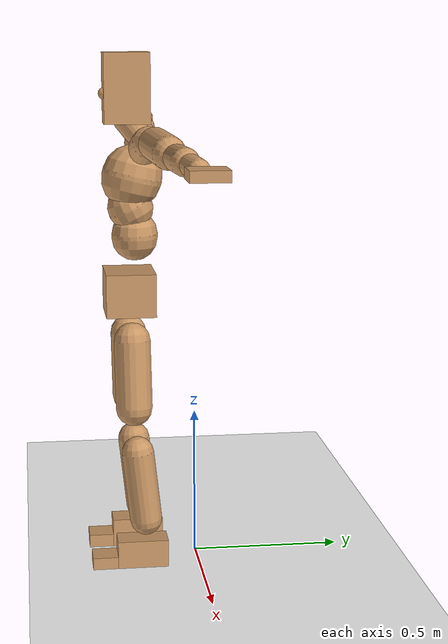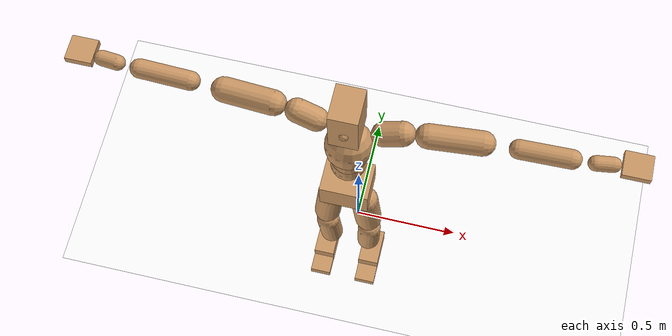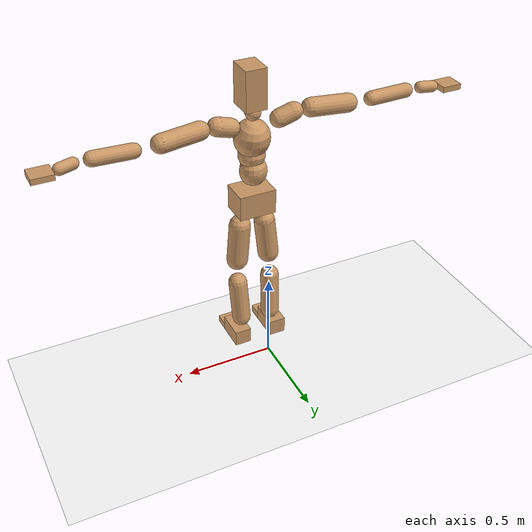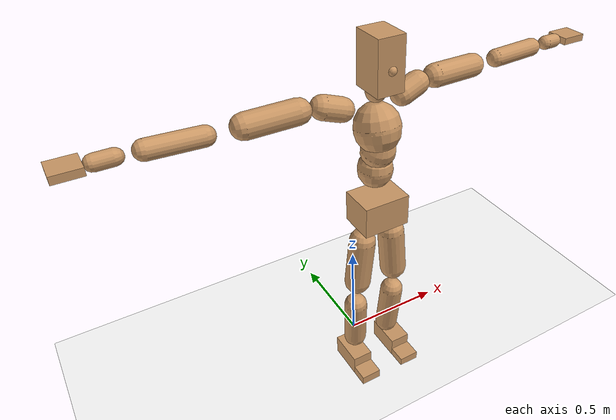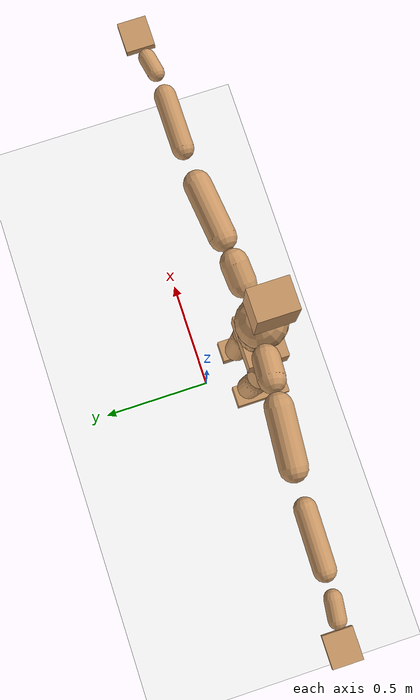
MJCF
<mujoco model="humanoid">
  <option integrator="implicitfast" />

  <visual>
    <global offwidth="1280" offheight="960" />
    <headlight active="1" ambient="0.34 0.34 0.34" diffuse="0.5 0.5 0.5" />
  </visual>

  <default>
    <joint damping="2" stiffness="2" armature="0.01" limited="true" solimplimit="0 .99 .01" />
    <geom condim="1" friction="0.7 0.005 0.0001" solimp=".99 .99 .003" solref="0.015 1" margin="0.001" rgba="0.8 0.6 .4 1" />
    <default class="smplcontact">
      <geom condim="3" friction="1. 0.005 0.0001" solref="0.015 1" solimp="0.98 0.98 0.001" priority="1" />
    </default>
    <default class="stiff_medium">
      <joint stiffness="10" />
    </default>
    <default class="stiff_medium_higher">
      <joint stiffness="50" />
    </default>
    <default class="stiff_high">
      <joint stiffness="100" />
    </default>
  </default>

  <asset>
    <texture type="skybox" builtin="gradient" rgb1="0.99 0.99 0.99" rgb2="0.608 0.828 0.892" width="100" />
    <texture builtin="flat" height="1278" mark="cross" markrgb="1 1 1" name="texgeom" random="0.01" rgb1="0.8 0.6 0.4" rgb2="0.8 0.6 0.4" type="cube" width="127" />
    <texture name="texplane" type="2d" builtin="checker" markrgb="1 1 1" rgb1="0.756 0.772 0.76" rgb2="0.6 0.6 0.6" width="100" height="100" />
    <material name="MatPlane" reflectance="0.5" texture="texplane" texrepeat="1 1" texuniform="true" />
    <material name="geom" texture="texgeom" texuniform="true" />
  </asset>

  <worldbody>
    <light name="tracking_light" pos="0 0 7" dir="0 0 -1" directional="true" cutoff="100" exponent="1" diffuse="1 1 1" specular="0.1 0.1 0.1" mode="trackcom" />
    <camera name="back" pos="0 3 2.4" xyaxes="-1 0 0 0 -1 2" mode="trackcom" />
    <camera name="side" pos="-3 0 2.4" xyaxes="0 -1 0 1 0 2" mode="trackcom" />
    <camera name="front_side" pos="-2.8 -2.8 0.8" xyaxes="0.5 -0.5 0 0.1 0.1 1" mode="trackcom" />
    <geom condim="3" name="floor" pos="0 0 0" rgba="1 1 1 1" size="100 100 .2" type="plane" material="MatPlane" />
    <body name="Pelvis" pos="-0.0018 -0.2233 0.9367" euler="90 0 0">
      <site name="Pelvis" size="0.01" />
      <freejoint name="Pelvis" />
      <geom type="box" pos="-0.0000 -0.0121 -0.0055" size="0.1069 0.0722 0.083" quat="1.0000 0.0000 0.0000 0.0000" density="3165.830099" name="Pelvis" />
      <body name="L_Hip" pos="0.0695 -0.0914 -0.0068">
        <joint name="L_Hip_x" type="hinge" pos="0 0 0" axis="1 0 0" stiffness="10.0" range="-160.0 22.92" class="stiff_medium" damping="15.0" armature="0.01"/>
        <joint name="L_Hip_y" type="hinge" pos="0 0 0" axis="0 1 0" stiffness="10.0" range="-70.0 70.0" class="stiff_medium" damping="10.000000000000004" armature="0.010000000000000009"/>
        <joint name="L_Hip_z" type="hinge" pos="0 0 0" axis="0 0 1" stiffness="10.0" range="-28.65 90.0" class="stiff_medium" damping="10.0" armature="0.01"/>
        <geom type="capsule" density="2040.816327" fromto="0.0069 -0.075 -0.0009 0.0274 -0.3002 -0.0036" size="0.0615" name="L_Hip" />
        <body name="L_Knee" pos="0.0343 -0.3752 -0.0045">
          <joint name="L_Knee_x" type="hinge" pos="0 0 0" axis="1 0 0" range="-5.16 171.89" damping="8.000000000000002" armature="0.010000000000000005" stiffness="2.0"/>
          <joint name="L_Knee_y" type="hinge" pos="0 0 0" axis="0 1 0" range="-4.58 6.88" damping="8.000000000000002" armature="0.010000000000000007" stiffness="2.0"/>
          <joint name="L_Knee_z" type="hinge" pos="0 0 0" axis="0 0 1" range="-6.88 4.58" damping="8.000000000000002" armature="0.010000000000000005" stiffness="2.0"/>
          <geom type="capsule" density="1234.567901" fromto="-0.0027 -0.0796 -0.0087 -0.0109 -0.3184 -0.035" size="0.0541" name="L_Knee" />
          <body name="L_Ankle" pos="-0.0136 -0.398 -0.0437">
            <joint name="L_Ankle_x" type="hinge" pos="0 0 0" axis="1 0 0" range="-45.84 45.84" class="stiff_medium" damping="6.00000000000005" armature="0.010000000000000167" stiffness="10.0"/>
            <joint name="L_Ankle_y" type="hinge" pos="0 0 0" axis="0 1 0" range="-74.48 22.92" class="stiff_medium" damping="3.000000000000001" armature="0.010000000000000005" stiffness="10.0"/>
            <joint name="L_Ankle_z" type="hinge" pos="0 0 0" axis="0 0 1" range="-4.58 4.58" class="stiff_medium" damping="6.000000000000072" armature="0.01000000000000024" stiffness="10.0"/>
            <geom type="box" pos="0.0233 -0.0239 0.0242" size="0.0483 0.0464 0.085" quat="1.0000 0.0000 0.0000 0.0000" density="449.071558" name="L_Ankle" class="smplcontact" />
            <body name="L_Toe" pos="0.0264 -0.0558 0.1193">
              <joint name="L_Toe_x" type="hinge" pos="0 0 0" axis="1 0 0" range="-91.67 22.92" armature="0.0100000000000001" damping="2.0000000000000098" stiffness="2.0"/>
              <joint name="L_Toe_y" type="hinge" pos="0 0 0" axis="0 1 0" range="-4.58 4.58" armature="0.009999999999999976" damping="1.9999999999999976" stiffness="2.0"/>
              <joint name="L_Toe_z" type="hinge" pos="0 0 0" axis="0 0 1" range="-4.58 4.58" armature="0.00999999999999938" damping="1.9999999999999378" stiffness="2.0"/>
              <geom type="box" pos="-0.003 0.0055 0.0248" size="0.0478 0.02 0.0496" quat="1.0000 0.0000 0.0000 0.0000" density="423.206892" name="L_Toe" class="smplcontact" />
            </body>
          </body>
        </body>
      </body>
      <body name="R_Hip" pos="-0.0677 -0.0905 -0.0043">
        <joint name="R_Hip_x" type="hinge" pos="0 0 0" axis="1 0 0" stiffness="10.0" range="-160.0 22.92" class="stiff_medium" damping="15.0" armature="0.01"/>
        <joint name="R_Hip_y" type="hinge" pos="0 0 0" axis="0 1 0" stiffness="10.0" range="-70.0 70.0" class="stiff_medium" damping="10.000000000000004" armature="0.010000000000000009"/>
        <joint name="R_Hip_z" type="hinge" pos="0 0 0" axis="0 0 1" stiffness="10.0" range="-90.0 28.65" class="stiff_medium" damping="10.0" armature="0.01"/>
        <geom type="capsule" density="2040.816327" fromto="-0.0077 -0.0765 -0.0018 -0.0306 -0.3061 -0.0071" size="0.0606" name="R_Hip" />
        <body name="R_Knee" pos="-0.0383 -0.3826 -0.0089">
          <joint name="R_Knee_x" type="hinge" pos="0 0 0" axis="1 0 0" range="-5.16 171.89" damping="8.000000000000002" armature="0.010000000000000005" stiffness="2.0"/>
          <joint name="R_Knee_y" type="hinge" pos="0 0 0" axis="0 1 0" range="-6.88 4.58" damping="8.000000000000002" armature="0.010000000000000007" stiffness="2.0"/>
          <joint name="R_Knee_z" type="hinge" pos="0 0 0" axis="0 0 1" range="-4.58 6.88" damping="8.000000000000002" armature="0.010000000000000005" stiffness="2.0"/>
          <geom type="capsule" density="1234.567901" fromto="0.0032 -0.0797 -0.0085 0.0126 -0.3187 -0.0338" size="0.0541" name="R_Knee" />
          <body name="R_Ankle" pos="0.0158 -0.3984 -0.0423">
            <joint name="R_Ankle_x" type="hinge" pos="0 0 0" axis="1 0 0" range="-45.84 45.84" class="stiff_medium" damping="6.00000000000005" armature="0.010000000000000167" stiffness="10.0"/>
            <joint name="R_Ankle_y" type="hinge" pos="0 0 0" axis="0 1 0" range="-22.92 74.48" class="stiff_medium" damping="3.000000000000001" armature="0.010000000000000005" stiffness="10.0"/>
            <joint name="R_Ankle_z" type="hinge" pos="0 0 0" axis="0 0 1" range="-4.58 4.58" class="stiff_medium" damping="6.000000000000072" armature="0.01000000000000024" stiffness="10.0"/>
            <geom type="box" pos="-0.0212 -0.0174 0.0256" size="0.0483 0.0478 0.0865" quat="1.0000 0.0000 0.0000 0.0000" density="434.700981" name="R_Ankle" class="smplcontact" />
            <body name="R_Toe" pos="-0.0254 -0.0481 0.1233">
              <joint name="R_Toe_x" type="hinge" pos="0 0 0" axis="1 0 0" range="-91.67 22.92" armature="0.0100000000000001" damping="2.0000000000000098" stiffness="2.0"/>
              <joint name="R_Toe_y" type="hinge" pos="0 0 0" axis="0 1 0" range="-4.58 4.58" armature="0.009999999999999976" damping="1.9999999999999976" stiffness="2.0"/>
              <joint name="R_Toe_z" type="hinge" pos="0 0 0" axis="0 0 1" range="-4.58 4.58" armature="0.00999999999999938" damping="1.9999999999999378" stiffness="2.0"/>
              <geom type="box" pos="0.0042 0.0045 0.0227" size="0.0479 0.0216 0.0493" quat="1.0000 0.0000 0.0000 0.0000" density="407.384095" name="R_Toe" class="smplcontact" />
            </body>
          </body>
        </body>
      </body>
      <body name="Torso" pos="-0.0025 0.109 -0.0267">
        <joint name="Torso_x" type="hinge" pos="0 0 0" axis="1 0 0" range="-25.78 57.3" class="stiff_medium" damping="17.816617842535415" armature="0.01220444282408803" stiffness="11.55979291666667"/>
        <joint name="Torso_y" type="hinge" pos="0 0 0" axis="0 1 0" range="-57.3 57.3" class="stiff_high" damping="32.66648617457636" armature="0.023482633249027433" stiffness="113.6051595744681"/>
        <joint name="Torso_z" type="hinge" pos="0 0 0" axis="0 0 1" range="-34.38 34.38" class="stiff_high" damping="26.53205559463283" armature="0.016035100718302133" stiffness="109.75141136363638"/>
        <geom type="capsule" density="2040.816327" fromto="0.0025 0.0608 0.0005 0.003 0.0743 0.0006" size="0.0769" name="Torso" />
        <body name="Spine" pos="0.0055 0.1352 0.0011">
          <joint name="Spine_x" type="hinge" pos="0 0 0" axis="1 0 0" stiffness="11.652306458333332" range="-25.78 57.3" class="stiff_medium" damping="18.346849955919502" armature="0.012838923235543207"/>
          <joint name="Spine_y" type="hinge" pos="0 0 0" axis="0 1 0" stiffness="12.490174523809525" range="-57.3 57.3" class="stiff_high" damping="13.727844217436889" armature="0.02357524439747789"/>
          <joint name="Spine_z" type="hinge" pos="0 0 0" axis="0 0 1" stiffness="24.140002666666668" range="-34.38 34.38" class="stiff_high" damping="18.060617405335822" armature="0.018767022520783626"/>
          <geom type="capsule" density="2040.816327" fromto="0.0007 0.0238 0.0114 0.0008 0.0291 0.014" size="0.0755" name="Spine" />
          <body name="Chest" pos="0.0015 0.0529 0.0254">
            <joint name="Chest_x" type="hinge" pos="0 0 0" axis="1 0 0" stiffness="12.52777088888889" range="-25.78 57.3" class="stiff_medium" damping="19.323420684641807" armature="0.013246821899117774"/>
            <joint name="Chest_y" type="hinge" pos="0 0 0" axis="0 1 0" stiffness="14.856075609756099" range="-57.3 57.3" class="stiff_high" damping="14.973397185345426" armature="0.02358069574104024"/>
            <joint name="Chest_z" type="hinge" pos="0 0 0" axis="0 0 1" stiffness="24.504841860465113" range="-34.38 34.38" class="stiff_high" damping="18.77641315249792" armature="0.01998208789833815"/>
            <geom type="capsule" density="2040.816327" fromto="-0.0009 0.0682 -0.0173 -0.001 0.0833 -0.0212" size="0.1002" name="Chest" />
            <body name="Neck" pos="-0.0028 0.2139 -0.0429">
              <joint name="Neck_x" type="hinge" pos="0 0 0" axis="1 0 0" range="-28.65 57.3" class="stiff_medium_higher" damping="9.999999999999984" armature="0.009999999999999967" stiffness="50.0"/>
              <joint name="Neck_y" type="hinge" pos="0 0 0" axis="0 1 0" range="-40.11 40.11" class="stiff_medium_higher" damping="10.0" armature="0.010000000000000002" stiffness="50.0"/>
              <joint name="Neck_z" type="hinge" pos="0 0 0" axis="0 0 1" range="-40.11 40.11" class="stiff_medium_higher" damping="9.999999999999982" armature="0.009999999999999966" stiffness="50.0"/>
              <geom type="capsule" density="1000" fromto="0.001 0.013 0.0103 0.0041 0.052 0.0411" size="0.0436" name="Neck" />
              <body name="Head" pos="0.0052 0.065 0.0513">
                <joint name="Head_x" type="hinge" pos="0 0 0" axis="1 0 0" range="-28.65 57.3" class="stiff_medium_higher" damping="2.0000000000000004" armature="0.010000000000000005" stiffness="50.0"/>
                <joint name="Head_y" type="hinge" pos="0 0 0" axis="0 1 0" range="-40.11 40.11" class="stiff_medium_higher" damping="2.0" armature="0.010000000000000002" stiffness="50.0"/>
                <joint name="Head_z" type="hinge" pos="0 0 0" axis="0 0 1" range="-40.11 40.11" class="stiff_medium_higher" damping="2.0" armature="0.010000000000000002" stiffness="50.0"/>
                <geom type="box" pos="-0.0042 0.0876 -0.0116" size="0.0606 0.1154 0.076" quat="1.0000 0.0000 0.0000 0.0000" density="1018.069894" name="Head" />
                <geom type="capsule" name="nose" size="0.02 0.01" pos="0 0.07 0.05" quat="1 0 0 0" mass="0" contype="0" conaffinity="0" />
              </body>
            </body>
            <body name="L_Thorax" pos="0.11032 0.17038 -0.04774">
              <joint name="L_Thorax_x" type="hinge" pos="0 0 0" axis="1 0 0" range="-10.89 4.58" class="stiff_medium_higher" damping="36.240858058789705" armature="0.0188561386347441" stiffness="87.06712295918368"/>
              <joint name="L_Thorax_y" type="hinge" pos="0 0 0" axis="0 1 0" range="-28.65 17.19" class="stiff_medium_higher" damping="40.96620891880994" armature="0.023898132129905852" stiffness="87.78041020408163"/>
              <joint name="L_Thorax_z" type="hinge" pos="0 0 0" axis="0 0 1" range="-31.51 40.11" class="stiff_medium_higher" damping="40.96835729355361" armature="0.023902786052476355" stiffness="87.77252448979593"/>
              <geom type="capsule" density="1000" fromto="0.02548 0.00854 -0.00252 0.10192 0.03416 -0.00994" size="0.0521" name="L_Thorax" />
              <body name="L_Shoulder" pos="0.1274 0.0427 -0.01246">
                <joint name="L_Shoulder_x" type="hinge" pos="0 0 0" axis="1 0 0" range="-97.4 97.4" class="stiff_medium" damping="10.216467793124611" armature="0.0167509757208208" stiffness="17.30848"/>
                <joint name="L_Shoulder_y" type="hinge" pos="0 0 0" axis="0 1 0" range="-108.86 80.21" class="stiff_medium" damping="12.210584630805666" armature="0.023662310849895674" stiffness="17.503030918367347"/>
                <joint name="L_Shoulder_z" type="hinge" pos="0 0 0" axis="0 0 1" range="-97.4 85.94" class="stiff_medium" damping="12.207996623471665" armature="0.023667800947755648" stiffness="17.491553877551024"/>
                <geom type="capsule" density="1000" fromto="0.07266 -0.00364 -0.0077 0.29078 -0.01428 -0.0308" size="0.0517" name="L_Shoulder" />
                <body name="L_Elbow" pos="0.36344 -0.01792 -0.0385">
                  <joint name="L_Elbow_x" type="hinge" pos="0 0 0" axis="1 0 0" range="-17.19 4.58" damping="7.586581525572873" armature="0.013620348817447373" stiffness="3.380601775510204"/>
                  <joint name="L_Elbow_y" type="hinge" pos="0 0 0" axis="0 1 0" range="-180.0 17.19" damping="9.758671052618125" armature="0.022523674987219237" stiffness="3.382455510204082"/>
                  <joint name="L_Elbow_z" type="hinge" pos="0 0 0" axis="0 0 1" range="-100.84 4.58" damping="9.76033597904075" armature="0.022552387617329597" stiffness="3.3793019183673465"/>
                  <geom type="capsule" density="1000" fromto="0.06972 0.00252 -0.00028 0.27916 0.01008 -0.00126" size="0.0405" name="L_Elbow" />
                  <body name="L_Wrist" pos="0.34888 0.0126 -0.00168">
                    <joint name="L_Wrist_x" type="hinge" pos="0 0 0" axis="1 0 0" range="-180.0 22.92" armature="0.013168550139583526" damping="2.8121939405269187" stiffness="3.002773530612245"/>
                    <joint name="L_Wrist_y" type="hinge" pos="0 0 0" axis="0 1 0" range="-17.19 17.19" armature="0.019145926143816317" damping="3.4076565933193956" stiffness="3.0325311428571426"/>
                    <joint name="L_Wrist_z" type="hinge" pos="0 0 0" axis="0 0 1" range="-22.92 22.92" armature="0.019468640829170915" damping="3.4294485001747197" stiffness="3.0205285306122445"/>
                    <geom type="capsule" density="1000" fromto="0.02352 -0.00224 -0.0042 0.09408 -0.0091 -0.0168" size="0.0318" name="L_Wrist" class="smplcontact" />
                    <body name="L_Hand" pos="0.1176 -0.01148 -0.02086">
                      <joint name="L_Hand_x" type="hinge" pos="0 0 0" axis="1 0 0" range="-17.19 17.19" armature="0.010418235140997116" damping="2.4154112856733914" stiffness="2.8000000000000003"/>
                      <joint name="L_Hand_y" type="hinge" pos="0 0 0" axis="0 1 0" range="-51.57 51.57" armature="0.015057977012994606" damping="2.903871058996418" stiffness="2.8000000000000003"/>
                      <joint name="L_Hand_z" type="hinge" pos="0 0 0" axis="0 0 1" range="-91.67 91.67" armature="0.01629476360214619" damping="3.0207726854567967" stiffness="2.8000000000000003"/>
                      <geom type="box" pos="0.06902 0.0014 -0.00812" size="0.0585 0.0158 0.0538" quat="1.0000 0.0000 0.0000 0.0000" density="400.552564" name="L_Hand" class="smplcontact" />
                    </body>
                  </body>
                </body>
              </body>
            </body>
            <body name="R_Thorax" pos="-0.11452 0.16632 -0.05404">
              <joint name="R_Thorax_x" type="hinge" pos="0 0 0" axis="1 0 0" range="-10.89 4.58" class="stiff_medium_higher" damping="36.240858058789705" armature="0.0188561386347441" stiffness="87.06712295918368"/>
              <joint name="R_Thorax_y" type="hinge" pos="0 0 0" axis="0 1 0" range="-17.19 28.65" class="stiff_medium_higher" damping="40.96620891880994" armature="0.023898132129905852" stiffness="87.78041020408163"/>
              <joint name="R_Thorax_z" type="hinge" pos="0 0 0" axis="0 0 1" range="-40.11 31.51" class="stiff_medium_higher" damping="40.96835729355361" armature="0.023902786052476355" stiffness="87.77252448979593"/>
              <geom type="capsule" density="1000" fromto="-0.02688 0.0091 -0.00252 -0.10752 0.0364 -0.01022" size="0.0511" name="R_Thorax" />
              <body name="R_Shoulder" pos="-0.1344 0.04564 -0.01274">
                <joint name="R_Shoulder_x" type="hinge" pos="0 0 0" axis="1 0 0" range="-97.4 97.4" class="stiff_medium" damping="10.216467793124611" armature="0.0167509757208208" stiffness="17.30848"/>
                <joint name="R_Shoulder_y" type="hinge" pos="0 0 0" axis="0 1 0" range="-80.21 108.86" class="stiff_medium" damping="12.210584630805666" armature="0.023662310849895674" stiffness="17.503030918367347"/>
                <joint name="R_Shoulder_z" type="hinge" pos="0 0 0" axis="0 0 1" range="-85.94 97.4" class="stiff_medium" damping="12.207996623471665" armature="0.023667800947755648" stiffness="17.491553877551024"/>
                <geom type="capsule" density="1000" fromto="-0.07098 -0.00378 -0.00602 -0.2842 -0.01498 -0.02394" size="0.0531" name="R_Shoulder" />
                <body name="R_Elbow" pos="-0.35518 -0.01862 -0.02996">
                  <joint name="R_Elbow_x" type="hinge" pos="0 0 0" axis="1 0 0" range="-17.19 4.58" damping="7.586581525572873" armature="0.013620348817447373" stiffness="3.380601775510204"/>
                  <joint name="R_Elbow_y" type="hinge" pos="0 0 0" axis="0 1 0" range="-17.19 180.0" damping="9.758671052618125" armature="0.022523674987219237" stiffness="3.382455510204082"/>
                  <joint name="R_Elbow_z" type="hinge" pos="0 0 0" axis="0 0 1" range="-4.58 100.84" damping="9.76033597904075" armature="0.022552387617329597" stiffness="3.3793019183673465"/>
                  <geom type="capsule" density="1000" fromto="-0.07154 0.00224 -0.00154 -0.28588 0.00868 -0.00616" size="0.0408" name="R_Elbow" />
                  <body name="R_Wrist" pos="-0.35742 0.01092 -0.00784">
                    <joint name="R_Wrist_x" type="hinge" pos="0 0 0" axis="1 0 0" range="-180.0 22.92" armature="0.013168550139583526" damping="2.8121939405269187" stiffness="3.002773530612245"/>
                    <joint name="R_Wrist_y" type="hinge" pos="0 0 0" axis="0 1 0" range="-17.19 17.19" armature="0.019145926143816317" damping="3.4076565933193956" stiffness="3.0325311428571426"/>
                    <joint name="R_Wrist_z" type="hinge" pos="0 0 0" axis="0 0 1" range="-22.92 22.92" armature="0.019468640829170915" damping="3.4294485001747197" stiffness="3.0205285306122445"/>
                    <geom type="capsule" density="1000" fromto="-0.02366 -0.00168 -0.00294 -0.09478 -0.00686 -0.01162" size="0.0326" name="R_Wrist" class="smplcontact" />
                    <body name="R_Hand" pos="-0.11844 -0.00854 -0.01442">
                      <joint name="R_Hand_x" type="hinge" pos="0 0 0" axis="1 0 0" range="-17.19 17.19" armature="0.010418235140997116" damping="2.4154112856733914" stiffness="2.8000000000000003"/>
                      <joint name="R_Hand_y" type="hinge" pos="0 0 0" axis="0 1 0" range="-51.57 51.57" armature="0.015057977012994606" damping="2.903871058996418" stiffness="2.8000000000000003"/>
                      <joint name="R_Hand_z" type="hinge" pos="0 0 0" axis="0 0 1" range="-91.67 91.67" armature="0.01629476360214619" damping="3.0207726854567967" stiffness="2.8000000000000003"/>
                      <geom type="box" pos="-0.06468 -0.00126 -0.01106" size="0.0569 0.0164 0.0546" quat="1.0000 0.0000 0.0000 0.0000" density="403.679611" name="R_Hand" class="smplcontact" />
                    </body>
                  </body>
                </body>
              </body>
            </body>
          </body>
        </body>
      </body>
    </body>
  </worldbody>
  <actuator>
    <general name="L_Hip_x" joint="L_Hip_x" biastype="affine" gainprm="287.33006409732246" biasprm="-215.3247604770444 -180.0 -2.0" ctrllimited="true" ctrlrange="-1 1" forcerange="-360.0 360.0" />
    <general name="L_Hip_y" joint="L_Hip_y" biastype="affine" gainprm="219.9114857512855" biasprm="0.0 -180.0 -2.000000000000001" ctrllimited="true" ctrlrange="-1 1" forcerange="-360.0 360.0" />
    <general name="L_Hip_z" joint="L_Hip_z" biastype="affine" gainprm="186.3749841742145" biasprm="96.3683546488669 -180.0 -2.0" ctrllimited="true" ctrlrange="-1 1" forcerange="-360.0 360.0" />
    <general name="L_Knee_x" joint="L_Knee_x" biastype="affine" gainprm="278.10948965903646" biasprm="261.8988715665131 -180.0 -2.0000000000000004" ctrllimited="true" ctrlrange="-1 1" forcerange="-360.0 360.0" />
    <general name="L_Knee_y" joint="L_Knee_y" biastype="affine" gainprm="18.001325905069514" biasprm="3.612831551628262 -180.0 -2.0000000000000004" ctrllimited="true" ctrlrange="-1 1" forcerange="-360.0 360.0" />
    <general name="L_Knee_z" joint="L_Knee_z" biastype="affine" gainprm="18.001325905069514" biasprm="-3.612831551628262 -180.0 -2.0000000000000004" ctrllimited="true" ctrlrange="-1 1" forcerange="-360.0 360.0" />
    <general name="L_Ankle_x" joint="L_Ankle_x" biastype="affine" gainprm="72.00530362027807" biasprm="0.0 -90.0 -2.0000000000000164" ctrllimited="true" ctrlrange="-1 1" forcerange="-180.0 180.0" />
    <general name="L_Ankle_y" joint="L_Ankle_y" biastype="affine" gainprm="76.49778111491148" biasprm="-40.49512930477244 -90.0 -2.0000000000000004" ctrllimited="true" ctrlrange="-1 1" forcerange="-180.0 180.0" />
    <general name="L_Ankle_z" joint="L_Ankle_z" biastype="affine" gainprm="7.1942471767206255" biasprm="0.0 -90.0 -2.000000000000024" ctrllimited="true" ctrlrange="-1 1" forcerange="-180.0 180.0" />
    <general name="L_Toe_x" joint="L_Toe_x" biastype="affine" gainprm="71.99902043497087" biasprm="-43.19689898685965 -72.0 -0.8000000000000039" ctrllimited="true" ctrlrange="-1 1" forcerange="-144.0 144.0" />
    <general name="L_Toe_y" joint="L_Toe_y" biastype="affine" gainprm="5.755397741376501" biasprm="0.0 -72.0 -0.799999999999999" ctrllimited="true" ctrlrange="-1 1" forcerange="-144.0 144.0" />
    <general name="L_Toe_z" joint="L_Toe_z" biastype="affine" gainprm="5.755397741376501" biasprm="0.0 -72.0 -0.7999999999999752" ctrllimited="true" ctrlrange="-1 1" forcerange="-144.0 144.0" />
    <general name="R_Hip_x" joint="R_Hip_x" biastype="affine" gainprm="287.33006409732246" biasprm="-215.3247604770444 -180.0 -2.0" ctrllimited="true" ctrlrange="-1 1" forcerange="-360.0 360.0" />
    <general name="R_Hip_y" joint="R_Hip_y" biastype="affine" gainprm="219.9114857512855" biasprm="0.0 -180.0 -2.000000000000001" ctrllimited="true" ctrlrange="-1 1" forcerange="-360.0 360.0" />
    <general name="R_Hip_z" joint="R_Hip_z" biastype="affine" gainprm="186.3749841742145" biasprm="-96.3683546488669 -180.0 -2.0" ctrllimited="true" ctrlrange="-1 1" forcerange="-360.0 360.0" />
    <general name="R_Knee_x" joint="R_Knee_x" biastype="affine" gainprm="278.10948965903646" biasprm="261.8988715665131 -180.0 -2.0000000000000004" ctrllimited="true" ctrlrange="-1 1" forcerange="-360.0 360.0" />
    <general name="R_Knee_y" joint="R_Knee_y" biastype="affine" gainprm="18.001325905069514" biasprm="-3.612831551628262 -180.0 -2.0000000000000004" ctrllimited="true" ctrlrange="-1 1" forcerange="-360.0 360.0" />
    <general name="R_Knee_z" joint="R_Knee_z" biastype="affine" gainprm="18.001325905069514" biasprm="3.612831551628262 -180.0 -2.0000000000000004" ctrllimited="true" ctrlrange="-1 1" forcerange="-360.0 360.0" />
    <general name="R_Ankle_x" joint="R_Ankle_x" biastype="affine" gainprm="72.00530362027807" biasprm="0.0 -90.0 -2.0000000000000164" ctrllimited="true" ctrlrange="-1 1" forcerange="-180.0 180.0" />
    <general name="R_Ankle_y" joint="R_Ankle_y" biastype="affine" gainprm="76.49778111491148" biasprm="40.49512930477244 -90.0 -2.0000000000000004" ctrllimited="true" ctrlrange="-1 1" forcerange="-180.0 180.0" />
    <general name="R_Ankle_z" joint="R_Ankle_z" biastype="affine" gainprm="7.1942471767206255" biasprm="0.0 -90.0 -2.000000000000024" ctrllimited="true" ctrlrange="-1 1" forcerange="-180.0 180.0" />
    <general name="R_Toe_x" joint="R_Toe_x" biastype="affine" gainprm="71.99902043497087" biasprm="-43.19689898685965 -72.0 -0.8000000000000039" ctrllimited="true" ctrlrange="-1 1" forcerange="-144.0 144.0" />
    <general name="R_Toe_y" joint="R_Toe_y" biastype="affine" gainprm="5.755397741376501" biasprm="0.0 -72.0 -0.799999999999999" ctrllimited="true" ctrlrange="-1 1" forcerange="-144.0 144.0" />
    <general name="R_Toe_z" joint="R_Toe_z" biastype="affine" gainprm="5.755397741376501" biasprm="0.0 -72.0 -0.7999999999999752" ctrllimited="true" ctrlrange="-1 1" forcerange="-144.0 144.0" />
    <general name="Torso_x" joint="Torso_x" biastype="affine" gainprm="201.14310764492842" biasprm="76.31235860577928 -277.43503000000004 -4.751098091342778" ctrllimited="true" ctrlrange="-1 1" forcerange="-416.1525450000001 416.1525450000001" />
    <general name="Torso_y" joint="Torso_y" biastype="affine" gainprm="272.67246693299046" biasprm="0.0 -272.65238297872344 -6.533297234915272" ctrllimited="true" ctrlrange="-1 1" forcerange="-408.9785744680852 408.9785744680852" />
    <general name="Torso_z" joint="Torso_z" biastype="affine" gainprm="158.05367395985348" biasprm="0.0 -263.4033872727273 -5.306411118926566" ctrllimited="true" ctrlrange="-1 1" forcerange="-395.10508090909093 395.10508090909093" />
    <general name="Spine_x" joint="Spine_x" biastype="affine" gainprm="202.75286496534218" biasprm="76.9230898375973 -279.655355 -4.8924933215785344" ctrllimited="true" ctrlrange="-1 1" forcerange="-419.4830325 419.4830325" />
    <general name="Spine_y" joint="Spine_y" biastype="affine" gainprm="299.7862696190556" biasprm="0.0 -299.7641885714286 -6.8639221087184445" ctrllimited="true" ctrlrange="-1 1" forcerange="-449.6462828571429 449.6462828571429" />
    <general name="Spine_z" joint="Spine_z" biastype="affine" gainprm="173.82082214076556" biasprm="0.0 -289.680032 -6.020205801778608" ctrllimited="true" ctrlrange="-1 1" forcerange="-434.520048 434.520048" />
    <general name="Chest_x" joint="Chest_x" biastype="affine" gainprm="217.98615136277013" biasprm="82.70249748380492 -300.6665013333334 -5.152912182571148" ctrllimited="true" ctrlrange="-1 1" forcerange="-450.999752 450.999752" />
    <general name="Chest_y" joint="Chest_y" biastype="affine" gainprm="356.57207829543177" biasprm="0.0 -356.5458146341464 -7.486698592672713" ctrllimited="true" ctrlrange="-1 1" forcerange="-534.8187219512196 534.8187219512196" />
    <general name="Chest_z" joint="Chest_z" biastype="affine" gainprm="176.44785783296902" biasprm="0.0 -294.0581023255814 -6.258804384165973" ctrllimited="true" ctrlrange="-1 1" forcerange="-441.08715348837205 441.08715348837205" />
    <general name="Neck_x" joint="Neck_x" biastype="affine" gainprm="27.00198885760427" biasprm="9.000662952534757 -36.0 -0.7999999999999987" ctrllimited="true" ctrlrange="-1 1" forcerange="-72.0 72.0" />
    <general name="Neck_y" joint="Neck_y" biastype="affine" gainprm="25.20185626709732" biasprm="0.0 -36.0 -0.8" ctrllimited="true" ctrlrange="-1 1" forcerange="-72.0 72.0" />
    <general name="Neck_z" joint="Neck_z" biastype="affine" gainprm="25.20185626709732" biasprm="0.0 -36.0 -0.7999999999999986" ctrllimited="true" ctrlrange="-1 1" forcerange="-72.0 72.0" />
    <general name="Head_x" joint="Head_x" biastype="affine" gainprm="18.001325905069514" biasprm="6.000441968356505 -24.0 -0.8000000000000003" ctrllimited="true" ctrlrange="-1 1" forcerange="-48.0 48.0" />
    <general name="Head_y" joint="Head_y" biastype="affine" gainprm="16.801237511398213" biasprm="0.0 -24.0 -0.8" ctrllimited="true" ctrlrange="-1 1" forcerange="-48.0 48.0" />
    <general name="Head_z" joint="Head_z" biastype="affine" gainprm="16.801237511398213" biasprm="0.0 -24.0 -0.8" ctrllimited="true" ctrlrange="-1 1" forcerange="-48.0 48.0" />
    <general name="L_Thorax_x" joint="L_Thorax_x" biastype="affine" gainprm="28.21000227853141" biasprm="-11.506471517616887 -208.96109510204082 -2.899268644703177" ctrllimited="true" ctrlrange="-1 1" forcerange="-417.92219020408163 417.92219020408163" />
    <general name="L_Thorax_y" joint="L_Thorax_y" biastype="affine" gainprm="84.27540118209936" biasprm="-21.06885029552484 -210.6729844897959 -3.277296713504795" ctrllimited="true" ctrlrange="-1 1" forcerange="-421.3459689795918 421.3459689795918" />
    <general name="L_Thorax_z" joint="L_Thorax_z" biastype="affine" gainprm="131.65929338702185" biasprm="15.809409705785923 -210.6540587755102 -3.2774685834842887" ctrllimited="true" ctrlrange="-1 1" forcerange="-421.3081175510204 421.3081175510204" />
    <general name="L_Shoulder_x" joint="L_Shoulder_x" biastype="affine" gainprm="141.23310021032776" biasprm="0.0 -83.080704 -2.724391411499896" ctrllimited="true" ctrlrange="-1 1" forcerange="-166.161408 166.161408" />
    <general name="L_Shoulder_y" joint="L_Shoulder_y" biastype="affine" gainprm="138.61955280584408" biasprm="-21.005184259202586 -84.01454840816328 -3.256155901548178" ctrllimited="true" ctrlrange="-1 1" forcerange="-168.02909681632656 168.02909681632656" />
    <general name="L_Shoulder_z" joint="L_Shoulder_z" biastype="affine" gainprm="134.33037540273168" biasprm="-8.396564318290107 -83.9594586122449 -3.2554657662591104" ctrllimited="true" ctrlrange="-1 1" forcerange="-167.9189172244898 167.9189172244898" />
    <general name="L_Elbow_x" joint="L_Elbow_x" biastype="affine" gainprm="23.120771250680953" biasprm="-13.39241733904855 -121.70166391836734 -1.2138530440916597" ctrllimited="true" ctrlrange="-1 1" forcerange="-243.4033278367347 243.4033278367347" />
    <general name="L_Elbow_y" joint="L_Elbow_y" biastype="affine" gainprm="209.53995807470082" biasprm="-173.0067476755517 -121.76839836734695 -1.5613873684189001" ctrllimited="true" ctrlrange="-1 1" forcerange="-243.5367967346939 243.5367967346939" />
    <general name="L_Elbow_z" joint="L_Elbow_z" biastype="affine" gainprm="111.91798423395207" biasprm="-102.19337091975173 -121.65486906122447 -1.5616537566465203" ctrllimited="true" ctrlrange="-1 1" forcerange="-243.30973812244895 243.30973812244895" />
    <general name="L_Wrist_x" joint="L_Wrist_x" biastype="affine" gainprm="31.904067455407095" biasprm="-24.696880129584795 -18.01664118367347 -1.1248775762107674" ctrllimited="true" ctrlrange="-1 1" forcerange="-36.03328236734694 36.03328236734694" />
    <general name="L_Wrist_y" joint="L_Wrist_y" biastype="affine" gainprm="5.458958141984436" biasprm="0.0 -18.195186857142858 -1.3630626373277583" ctrllimited="true" ctrlrange="-1 1" forcerange="-36.390373714285715 36.390373714285715" />
    <general name="L_Wrist_z" joint="L_Wrist_z" biastype="affine" gainprm="7.249802464681568" biasprm="0.0 -18.123171183673467 -1.371779400069888" ctrllimited="true" ctrlrange="-1 1" forcerange="-36.246342367346934 36.246342367346934" />
    <general name="L_Hand_x" joint="L_Hand_x" biastype="affine" gainprm="5.040371253419465" biasprm="0.0 -16.8 -0.9661645142693566" ctrllimited="true" ctrlrange="-1 1" forcerange="-33.6 33.6" />
    <general name="L_Hand_y" joint="L_Hand_y" biastype="affine" gainprm="15.121113760258392" biasprm="0.0 -16.8 -1.1615484235985674" ctrllimited="true" ctrlrange="-1 1" forcerange="-33.6 33.6" />
    <general name="L_Hand_z" joint="L_Hand_z" biastype="affine" gainprm="26.879047865093792" biasprm="0.0 -16.8 -1.2083090741827187" ctrllimited="true" ctrlrange="-1 1" forcerange="-33.6 33.6" />
    <general name="R_Thorax_x" joint="R_Thorax_x" biastype="affine" gainprm="28.21000227853141" biasprm="-11.506471517616887 -208.96109510204082 -2.899268644703177" ctrllimited="true" ctrlrange="-1 1" forcerange="-417.92219020408163 417.92219020408163" />
    <general name="R_Thorax_y" joint="R_Thorax_y" biastype="affine" gainprm="84.27540118209936" biasprm="21.068850295524825 -210.6729844897959 -3.277296713504795" ctrllimited="true" ctrlrange="-1 1" forcerange="-421.3459689795918 421.3459689795918" />
    <general name="R_Thorax_z" joint="R_Thorax_z" biastype="affine" gainprm="131.65929338702185" biasprm="-15.809409705785923 -210.6540587755102 -3.2774685834842887" ctrllimited="true" ctrlrange="-1 1" forcerange="-421.3081175510204 421.3081175510204" />
    <general name="R_Shoulder_x" joint="R_Shoulder_x" biastype="affine" gainprm="141.23310021032776" biasprm="0.0 -83.080704 -2.724391411499896" ctrllimited="true" ctrlrange="-1 1" forcerange="-166.161408 166.161408" />
    <general name="R_Shoulder_y" joint="R_Shoulder_y" biastype="affine" gainprm="138.61955280584408" biasprm="21.005184259202586 -84.01454840816328 -3.256155901548178" ctrllimited="true" ctrlrange="-1 1" forcerange="-168.02909681632656 168.02909681632656" />
    <general name="R_Shoulder_z" joint="R_Shoulder_z" biastype="affine" gainprm="134.33037540273168" biasprm="8.396564318290089 -83.9594586122449 -3.2554657662591104" ctrllimited="true" ctrlrange="-1 1" forcerange="-167.9189172244898 167.9189172244898" />
    <general name="R_Elbow_x" joint="R_Elbow_x" biastype="affine" gainprm="23.120771250680953" biasprm="-13.39241733904855 -121.70166391836734 -1.2138530440916597" ctrllimited="true" ctrlrange="-1 1" forcerange="-243.4033278367347 243.4033278367347" />
    <general name="R_Elbow_y" joint="R_Elbow_y" biastype="affine" gainprm="209.53995807470082" biasprm="173.0067476755517 -121.76839836734695 -1.5613873684189001" ctrllimited="true" ctrlrange="-1 1" forcerange="-243.5367967346939 243.5367967346939" />
    <general name="R_Elbow_z" joint="R_Elbow_z" biastype="affine" gainprm="111.91798423395207" biasprm="102.19337091975173 -121.65486906122447 -1.5616537566465203" ctrllimited="true" ctrlrange="-1 1" forcerange="-243.30973812244895 243.30973812244895" />
    <general name="R_Wrist_x" joint="R_Wrist_x" biastype="affine" gainprm="31.904067455407095" biasprm="-24.696880129584795 -18.01664118367347 -1.1248775762107674" ctrllimited="true" ctrlrange="-1 1" forcerange="-36.03328236734694 36.03328236734694" />
    <general name="R_Wrist_y" joint="R_Wrist_y" biastype="affine" gainprm="5.458958141984436" biasprm="0.0 -18.195186857142858 -1.3630626373277583" ctrllimited="true" ctrlrange="-1 1" forcerange="-36.390373714285715 36.390373714285715" />
    <general name="R_Wrist_z" joint="R_Wrist_z" biastype="affine" gainprm="7.249802464681568" biasprm="0.0 -18.123171183673467 -1.371779400069888" ctrllimited="true" ctrlrange="-1 1" forcerange="-36.246342367346934 36.246342367346934" />
    <general name="R_Hand_x" joint="R_Hand_x" biastype="affine" gainprm="5.040371253419465" biasprm="0.0 -16.8 -0.9661645142693566" ctrllimited="true" ctrlrange="-1 1" forcerange="-33.6 33.6" />
    <general name="R_Hand_y" joint="R_Hand_y" biastype="affine" gainprm="15.121113760258392" biasprm="0.0 -16.8 -1.1615484235985674" ctrllimited="true" ctrlrange="-1 1" forcerange="-33.6 33.6" />
    <general name="R_Hand_z" joint="R_Hand_z" biastype="affine" gainprm="26.879047865093792" biasprm="0.0 -16.8 -1.2083090741827187" ctrllimited="true" ctrlrange="-1 1" forcerange="-33.6 33.6" />
  </actuator>
  <contact>
    <exclude body1="Torso" body2="Chest" />
    <exclude body1="Head" body2="Chest" />
    <exclude body1="R_Knee" body2="R_Toe" />
    <exclude body1="R_Knee" body2="L_Ankle" />
    <exclude body1="R_Knee" body2="L_Toe" />
    <exclude body1="L_Knee" body2="L_Toe" />
    <exclude body1="L_Knee" body2="R_Ankle" />
    <exclude body1="L_Knee" body2="R_Toe" />
    <exclude body1="L_Shoulder" body2="Chest" />
    <exclude body1="R_Shoulder" body2="Chest" />
  </contact>
  <sensor>
    <framelinvel name="sensor_Pelvis_framelinvel" objtype="xbody" objname="Pelvis" />
    <framelinvel name="sensor_L_Hip_framelinvel" objtype="xbody" objname="L_Hip" />
    <framelinvel name="sensor_L_Knee_framelinvel" objtype="xbody" objname="L_Knee" />
    <framelinvel name="sensor_L_Ankle_framelinvel" objtype="xbody" objname="L_Ankle" />
    <framelinvel name="sensor_L_Toe_framelinvel" objtype="xbody" objname="L_Toe" />
    <framelinvel name="sensor_R_Hip_framelinvel" objtype="xbody" objname="R_Hip" />
    <framelinvel name="sensor_R_Knee_framelinvel" objtype="xbody" objname="R_Knee" />
    <framelinvel name="sensor_R_Ankle_framelinvel" objtype="xbody" objname="R_Ankle" />
    <framelinvel name="sensor_R_Toe_framelinvel" objtype="xbody" objname="R_Toe" />
    <framelinvel name="sensor_Torso_framelinvel" objtype="xbody" objname="Torso" />
    <framelinvel name="sensor_Spine_framelinvel" objtype="xbody" objname="Spine" />
    <framelinvel name="sensor_Chest_framelinvel" objtype="xbody" objname="Chest" />
    <framelinvel name="sensor_Neck_framelinvel" objtype="xbody" objname="Neck" />
    <framelinvel name="sensor_Head_framelinvel" objtype="xbody" objname="Head" />
    <framelinvel name="sensor_L_Thorax_framelinvel" objtype="xbody" objname="L_Thorax" />
    <framelinvel name="sensor_L_Shoulder_framelinvel" objtype="xbody" objname="L_Shoulder" />
    <framelinvel name="sensor_L_Elbow_framelinvel" objtype="xbody" objname="L_Elbow" />
    <framelinvel name="sensor_L_Wrist_framelinvel" objtype="xbody" objname="L_Wrist" />
    <framelinvel name="sensor_L_Hand_framelinvel" objtype="xbody" objname="L_Hand" />
    <framelinvel name="sensor_R_Thorax_framelinvel" objtype="xbody" objname="R_Thorax" />
    <framelinvel name="sensor_R_Shoulder_framelinvel" objtype="xbody" objname="R_Shoulder" />
    <framelinvel name="sensor_R_Elbow_framelinvel" objtype="xbody" objname="R_Elbow" />
    <framelinvel name="sensor_R_Wrist_framelinvel" objtype="xbody" objname="R_Wrist" />
    <framelinvel name="sensor_R_Hand_framelinvel" objtype="xbody" objname="R_Hand" />
    <frameangvel name="sensor_Pelvis_frameangvel" objtype="xbody" objname="Pelvis" />
    <frameangvel name="sensor_L_Hip_frameangvel" objtype="xbody" objname="L_Hip" />
    <frameangvel name="sensor_L_Knee_frameangvel" objtype="xbody" objname="L_Knee" />
    <frameangvel name="sensor_L_Ankle_frameangvel" objtype="xbody" objname="L_Ankle" />
    <frameangvel name="sensor_L_Toe_frameangvel" objtype="xbody" objname="L_Toe" />
    <frameangvel name="sensor_R_Hip_frameangvel" objtype="xbody" objname="R_Hip" />
    <frameangvel name="sensor_R_Knee_frameangvel" objtype="xbody" objname="R_Knee" />
    <frameangvel name="sensor_R_Ankle_frameangvel" objtype="xbody" objname="R_Ankle" />
    <frameangvel name="sensor_R_Toe_frameangvel" objtype="xbody" objname="R_Toe" />
    <frameangvel name="sensor_Torso_frameangvel" objtype="xbody" objname="Torso" />
    <frameangvel name="sensor_Spine_frameangvel" objtype="xbody" objname="Spine" />
    <frameangvel name="sensor_Chest_frameangvel" objtype="xbody" objname="Chest" />
    <frameangvel name="sensor_Neck_frameangvel" objtype="xbody" objname="Neck" />
    <frameangvel name="sensor_Head_frameangvel" objtype="xbody" objname="Head" />
    <frameangvel name="sensor_L_Thorax_frameangvel" objtype="xbody" objname="L_Thorax" />
    <frameangvel name="sensor_L_Shoulder_frameangvel" objtype="xbody" objname="L_Shoulder" />
    <frameangvel name="sensor_L_Elbow_frameangvel" objtype="xbody" objname="L_Elbow" />
    <frameangvel name="sensor_L_Wrist_frameangvel" objtype="xbody" objname="L_Wrist" />
    <frameangvel name="sensor_L_Hand_frameangvel" objtype="xbody" objname="L_Hand" />
    <frameangvel name="sensor_R_Thorax_frameangvel" objtype="xbody" objname="R_Thorax" />
    <frameangvel name="sensor_R_Shoulder_frameangvel" objtype="xbody" objname="R_Shoulder" />
    <frameangvel name="sensor_R_Elbow_frameangvel" objtype="xbody" objname="R_Elbow" />
    <frameangvel name="sensor_R_Wrist_frameangvel" objtype="xbody" objname="R_Wrist" />
    <frameangvel name="sensor_R_Hand_frameangvel" objtype="xbody" objname="R_Hand" />
    <subtreelinvel name="Chest_subtreelinvel" body="Chest" />
    <gyro name="Pelvis_gyro" site="Pelvis" />
  </sensor>
</mujoco>
